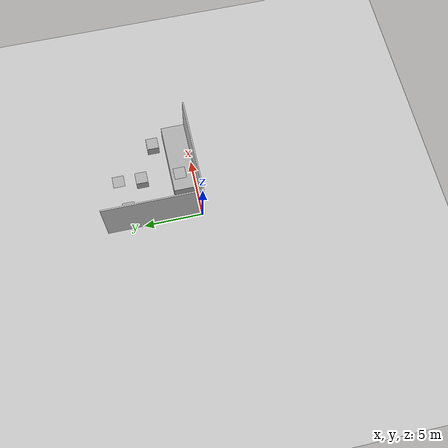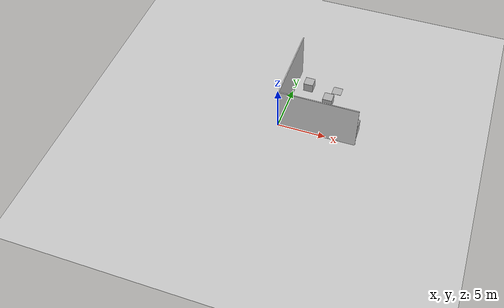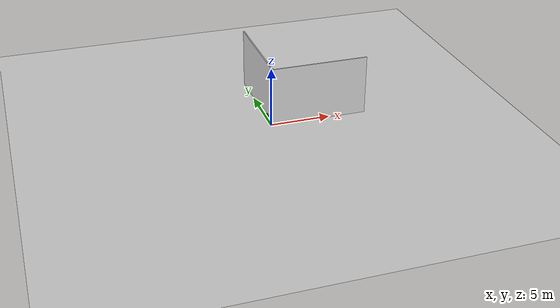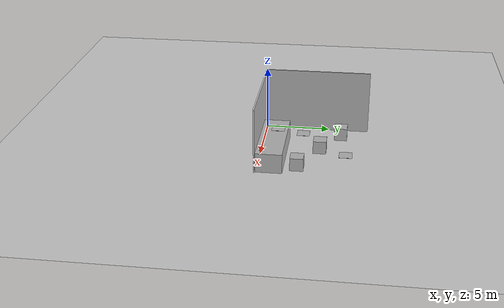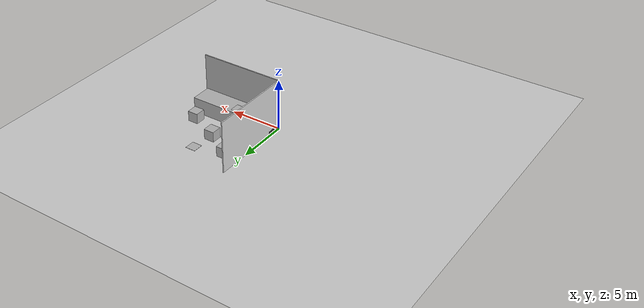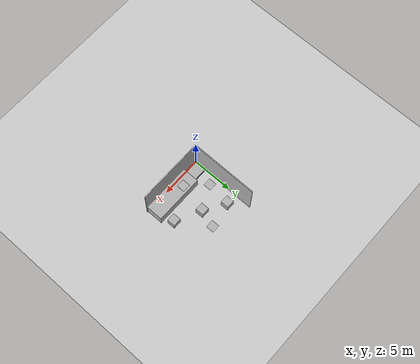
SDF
<sdf version="1.10">
 <world name="FRTL25world">
  <physics type="ode">
   <max_step_size>0.001</max_step_size>
   <real_time_factor>1</real_time_factor>
   <real_time_update_rate>1000</real_time_update_rate>
  </physics>
  <gravity>0 0 -9.8000000000000007</gravity>
  <magnetic_field>5.5644999999999998e-06 2.2875799999999999e-05 -4.2388400000000002e-05</magnetic_field>
  <atmosphere type="adiabatic"/>
  <scene>
   <ambient>0.400000006 0.400000006 0.400000006 1</ambient>
   <background>0.699999988 0.699999988 0.699999988 1</background>
   <shadows>true</shadows>
  </scene>
  <model name="ground"><include><uri>models/ground</uri></include></model>
  <model name="grass"><include><uri>models/grass</uri></include><pose>0 0 -0.4 0 0 0</pose></model>
  <model name="wall_west">
   <include><uri>models/wall_logo</uri></include>
   <pose degrees="true">0.05 4.05 2.5 0 0 180</pose>
  </model>
  <model name="wall_south">
   <include><uri>models/wall_logo</uri></include>
   <pose degrees="true">4.05 -0.05 2.5 0 0 -90</pose>
  </model>
  <model name="takeoff"><include><uri>models/takeoff_base</uri></include><pose>1 0.75 0.25 0 0 0</pose></model>
  <model name="moving1"><include><uri>models/moving_base</uri></include><pose>4.5 6.5 0.005 0 0 0</pose></model>
  <model name="moving2"><include><uri>models/moving_base</uri></include><pose>1.0 3.0 0.005 0 0 0</pose></model>
  <model name="moving3">
   <include><uri>models/moving_base</uri></include>
   <pose>3.5 1.25 1.515 0 0 0</pose>
  </model>
  <model name="high1"><include><uri>models/high_base</uri></include><pose>1.5 6.0 0.5 0 0 0</pose></model>
  <model name="high2"><include><uri>models/high_base</uri></include><pose>4.0 4.5 0.5 0 0 0</pose></model>
  <model name="high3"><include><uri>models/high_base</uri></include><pose>7.0 3.0 0.5 0 0 0</pose></model>
  <model name="phase_4_enviroment">
   <include><uri>models/box2x6</uri></include>
   <pose degrees="true">5.0 1.0 0.75 0 0 90</pose>
  </model>
  <light name="sun" type="directional">
   <pose>0 0 10 0 0 0</pose>
   <intensity>1</intensity>
   <direction>-0.5 0.10000000000000001 -0.90000000000000002</direction>
   <diffuse>0.800000012 0.800000012 0.800000012 1</diffuse>
   <specular>0.200000003 0.200000003 0.200000003 1</specular>
   <attenuation>
    <range>1000</range>
    <linear>0.01</linear>
    <constant>0.90000000000000002</constant>
    <quadratic>0.001</quadratic>
   </attenuation>
   <spot><inner_angle>0</inner_angle><outer_angle>0</outer_angle><falloff>0</falloff></spot>
  </light>
  <spherical_coordinates>
   <surface_model>EARTH_WGS84</surface_model>
   <world_frame_orientation>ENU</world_frame_orientation>
   <latitude_deg>47.397971057728974</latitude_deg>
   <longitude_deg>8.546163739800146</longitude_deg>
   <elevation>0</elevation>
  </spherical_coordinates>
 </world>
</sdf>

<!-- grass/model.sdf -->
<sdf version='1.9'>
  <model name='ground_plane'>
    <static>true</static>
    <pose>0 0 0 0 0 0</pose>
    <self_collide>false</self_collide>
    <link name='link'>
      <collision name='collision'>
        <geometry>
          <plane>
            <normal>0 0 1</normal>
            <size>30 30</size>
          </plane>
        </geometry>
        <surface>
          <friction>
            <ode/>
          </friction>
          <bounce/>
          <contact/>
        </surface>
      </collision>
      <visual name='visual1'>
        <pose>-11.25 -11.25 0 0 0 1.5708</pose>
        <geometry>
          <plane>
            <normal>0 0 1</normal>
            <size>7.5 7.5</size>
          </plane>
        </geometry>
        <material>
          <diffuse>1.0 1.0 1.0</diffuse>
          <specular>1.0 1.0 1.0</specular>
          <pbr>
            <metal>
              <albedo_map>materials/textures/grass.png</albedo_map>
              <metalness>0</metalness>
              <roughness>0.7</roughness>
            </metal>
          </pbr>
        </material>
      </visual>
      <visual name='visual2'>
        <pose>-3.75 -11.25 0 0 0 3.14159</pose>
        <geometry>
          <plane>
            <normal>0 0 1</normal>
            <size>7.5 7.5</size>
          </plane>
        </geometry>
        <material>
          <diffuse>1.0 1.0 1.0</diffuse>
          <specular>1.0 1.0 1.0</specular>
          <pbr>
            <metal>
              <albedo_map>materials/textures/grass.png</albedo_map>
              <metalness>0</metalness>
              <roughness>0.7</roughness>
            </metal>
          </pbr>
        </material>
      </visual>
      <visual name='visual3'>
        <pose>3.75 -11.25 0 0 0 4.71239</pose>
        <geometry>
          <plane>
            <normal>0 0 1</normal>
            <size>7.5 7.5</size>
          </plane>
        </geometry>
        <material>
          <diffuse>1.0 1.0 1.0</diffuse>
          <specular>1.0 1.0 1.0</specular>
          <pbr>
            <metal>
              <albedo_map>materials/textures/grass.png</albedo_map>
              <metalness>0</metalness>
              <roughness>0.7</roughness>
            </metal>
          </pbr>
        </material>
      </visual>
      <visual name='visual4'>
        <pose>11.25 -11.25 0 0 0 0</pose>
        <geometry>
          <plane>
            <normal>0 0 1</normal>
            <size>7.5 7.5</size>
          </plane>
        </geometry>
        <material>
          <diffuse>1.0 1.0 1.0</diffuse>
          <specular>1.0 1.0 1.0</specular>
          <pbr>
            <metal>
              <albedo_map>materials/textures/grass.png</albedo_map>
              <metalness>0</metalness>
              <roughness>0.7</roughness>
            </metal>
          </pbr>
        </material>
      </visual>
      <visual name='visual5'>
        <pose>-11.25 -3.75 0 0 0 3.14159</pose>
        <geometry>
          <plane>
            <normal>0 0 1</normal>
            <size>7.5 7.5</size>
          </plane>
        </geometry>
        <material>
          <diffuse>1.0 1.0 1.0</diffuse>
          <specular>1.0 1.0 1.0</specular>
          <pbr>
            <metal>
              <albedo_map>materials/textures/grass.png</albedo_map>
              <metalness>0</metalness>
              <roughness>0.7</roughness>
            </metal>
          </pbr>
        </material>
      </visual>
      <visual name='visual6'>
        <pose>-3.75 -3.75 0 0 0 1.5708</pose>
        <geometry>
          <plane>
            <normal>0 0 1</normal>
            <size>7.5 7.5</size>
          </plane>
        </geometry>
        <material>
          <diffuse>1.0 1.0 1.0</diffuse>
          <specular>1.0 1.0 1.0</specular>
          <pbr>
            <metal>
              <albedo_map>materials/textures/grass.png</albedo_map>
              <metalness>0</metalness>
              <roughness>0.7</roughness>
            </metal>
          </pbr>
        </material>
      </visual>
      <visual name='visual7'>
        <pose>3.75 -3.75 0 0 0 0</pose>
        <geometry>
          <plane>
            <normal>0 0 1</normal>
            <size>7.5 7.5</size>
          </plane>
        </geometry>
        <material>
          <diffuse>1.0 1.0 1.0</diffuse>
          <specular>1.0 1.0 1.0</specular>
          <pbr>
            <metal>
              <albedo_map>materials/textures/grass.png</albedo_map>
              <metalness>0</metalness>
              <roughness>0.7</roughness>
            </metal>
          </pbr>
        </material>
      </visual>
      <visual name='visual8'>
        <pose>11.25 -3.75 0 0 0 4.71239</pose>
        <geometry>
          <plane>
            <normal>0 0 1</normal>
            <size>7.5 7.5</size>
          </plane>
        </geometry>
        <material>
          <diffuse>1.0 1.0 1.0</diffuse>
          <specular>1.0 1.0 1.0</specular>
          <pbr>
            <metal>
              <albedo_map>materials/textures/grass.png</albedo_map>
              <metalness>0</metalness>
              <roughness>0.7</roughness>
            </metal>
          </pbr>
        </material>
      </visual>
      <visual name='visual9'>
        <pose>-11.25 3.75 0 0 0 0</pose>
        <geometry>
          <plane>
            <normal>0 0 1</normal>
            <size>7.5 7.5</size>
          </plane>
        </geometry>
        <material>
          <diffuse>1.0 1.0 1.0</diffuse>
          <specular>1.0 1.0 1.0</specular>
          <pbr>
            <metal>
              <albedo_map>materials/textures/grass.png</albedo_map>
              <metalness>0</metalness>
              <roughness>0.7</roughness>
            </metal>
          </pbr>
        </material>
      </visual>
      <visual name='visual10'>
        <pose>-3.75 3.75 0 0 0 0</pose>
        <geometry>
          <plane>
            <normal>0 0 1</normal>
            <size>7.5 7.5</size>
          </plane>
        </geometry>
        <material>
          <diffuse>1.0 1.0 1.0</diffuse>
          <specular>1.0 1.0 1.0</specular>
          <pbr>
            <metal>
              <albedo_map>materials/textures/grass.png</albedo_map>
              <metalness>0</metalness>
              <roughness>0.7</roughness>
            </metal>
          </pbr>
        </material>
      </visual>
      <visual name='visual11'>
        <pose>3.75 3.75 0 0 0 3.14159</pose>
        <geometry>
          <plane>
            <normal>0 0 1</normal>
            <size>7.5 7.5</size>
          </plane>
        </geometry>
        <material>
          <diffuse>1.0 1.0 1.0</diffuse>
          <specular>1.0 1.0 1.0</specular>
          <pbr>
            <metal>
              <albedo_map>materials/textures/grass.png</albedo_map>
              <metalness>0</metalness>
              <roughness>0.7</roughness>
            </metal>
          </pbr>
        </material>
      </visual>
      <visual name='visual12'>
        <pose>11.25 3.75 0 0 0 4.71239</pose>
        <geometry>
          <plane>
            <normal>0 0 1</normal>
            <size>7.5 7.5</size>
          </plane>
        </geometry>
        <material>
          <diffuse>1.0 1.0 1.0</diffuse>
          <specular>1.0 1.0 1.0</specular>
          <pbr>
            <metal>
              <albedo_map>materials/textures/grass.png</albedo_map>
              <metalness>0</metalness>
              <roughness>0.7</roughness>
            </metal>
          </pbr>
        </material>
      </visual>
      <visual name='visual13'>
        <pose>-11.25 11.25 0 0 0 1.5708</pose>
        <geometry>
          <plane>
            <normal>0 0 1</normal>
            <size>7.5 7.5</size>
          </plane>
        </geometry>
        <material>
          <diffuse>1.0 1.0 1.0</diffuse>
          <specular>1.0 1.0 1.0</specular>
          <pbr>
            <metal>
              <albedo_map>materials/textures/grass.png</albedo_map>
              <metalness>0</metalness>
              <roughness>0.7</roughness>
            </metal>
          </pbr>
        </material>
      </visual>
      <visual name='visual14'>
        <pose>-3.75 11.25 0 0 0 3.14159</pose>
        <geometry>
          <plane>
            <normal>0 0 1</normal>
            <size>7.5 7.5</size>
          </plane>
        </geometry>
        <material>
          <diffuse>1.0 1.0 1.0</diffuse>
          <specular>1.0 1.0 1.0</specular>
          <pbr>
            <metal>
              <albedo_map>materials/textures/grass.png</albedo_map>
              <metalness>0</metalness>
              <roughness>0.7</roughness>
            </metal>
          </pbr>
        </material>
      </visual>
      <visual name='visual15'>
        <pose>3.75 11.25 0 0 0 0</pose>
        <geometry>
          <plane>
            <normal>0 0 1</normal>
            <size>7.5 7.5</size>
          </plane>
        </geometry>
        <material>
          <diffuse>1.0 1.0 1.0</diffuse>
          <specular>1.0 1.0 1.0</specular>
          <pbr>
            <metal>
              <albedo_map>materials/textures/grass.png</albedo_map>
              <metalness>0</metalness>
              <roughness>0.7</roughness>
            </metal>
          </pbr>
        </material>
      </visual>
      <visual name='visual16'>
        <pose>11.25 11.25 0 0 0 0</pose>
        <geometry>
          <plane>
            <normal>0 0 1</normal>
            <size>7.5 7.5</size>
          </plane>
        </geometry>
        <material>
          <diffuse>1.0 1.0 1.0</diffuse>
          <specular>1.0 1.0 1.0</specular>
          <pbr>
            <metal>
              <albedo_map>materials/textures/grass.png</albedo_map>
              <metalness>0</metalness>
              <roughness>0.7</roughness>
            </metal>
          </pbr>
        </material>
      </visual>
      <enable_wind>false</enable_wind>
    </link>
  </model>
</sdf>

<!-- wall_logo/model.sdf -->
<sdf version='1.10'>
  <model name='wall'>
    <pose>0 0 0 0 0 0</pose>
    <link name='box_link'>
      <collision name='box_collision'>
        <geometry>
          <box>
            <size>0.1 8.1 5</size>
          </box>
        </geometry>
        <surface>
          <friction>
            <ode/>
          </friction>
          <bounce/>
          <contact/>
        </surface>
      </collision>
      <visual name='wall_visual'>
        <geometry>
          <box>
            <size>0.1 8.1 5</size>
          </box>
        </geometry>
        <material>
          <ambient>0.827 0.827 0.827 1.0</ambient>
          <diffuse>0.827 0.827 0.827 1.0</diffuse>
          <specular>0.827 0.827 0.827 1.0</specular>
          <emissive>0.2 0.2 0.2 1</emissive>
          <pbr>
              <metal>
                  <albedo_map>materials/textures/wall_4k_diff.jpg</albedo_map>
                  <emissive_map>materials/textures/wall_4k.png</emissive_map>
              </metal>
          </pbr>
        </material>
        <cast_shadows>false</cast_shadows>
      </visual>
      <visual name='image'>
        <pose>-0.0501 0 0 0 0 0</pose>
        <geometry>
          <box>
            <size>0.000001 8.1 5</size>
          </box>
        </geometry>
        <material>
          <diffuse>0.7 0.7 0.7 1</diffuse>
          <specular>1 1 1 1</specular>
          <pbr>
            <metal>
              <albedo_map>materials/textures/robocup_logo.png</albedo_map>   <!--Takeoff base image-->
              <metalness> 0 </metalness>
              <roughness>1</roughness>
            </metal>
          </pbr>
      </material>
      <cast_shadows>false</cast_shadows>
    </visual>
      <pose>0 0 0 0 0 0</pose>
      <enable_wind>false</enable_wind>
    </link>
    <static>true</static>
    <self_collide>false</self_collide>
  </model>
</sdf>

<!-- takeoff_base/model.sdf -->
<sdf version='1.10'>
<model name='base_takeoff'>
  <link name='box_link'>
    <collision name='box_collision'>
      <geometry>
        <box>
          <size>2 1.5 0.5</size>
        </box>
      </geometry>
      <surface>
        <friction>
          <ode/>
        </friction>
        <bounce/>
        <contact/>
      </surface>
    </collision>
    <visual name='visual'>
      <geometry>
        <box>
          <size>2 1.5 0.499</size>
        </box>
      </geometry>
      <material>
        <ambient>0.175 0.175 0.175  1.0</ambient> <!-- dark grey -->
        <diffuse>0.175 0.175 0.175  1.0</diffuse>
        <specular>1 1 1 1</specular>
      </material>
    </visual>
    <visual name='image'>
      <pose>0 0 0.25 0 0 0</pose>
        <geometry>
          <box>
            <size>2 1.5 0.001</size>
          </box>
        </geometry>
        <material>
        <diffuse>0.7 0.7 0.7 1</diffuse>
        <specular>1 1 1 1</specular>
        <pbr>
            <metal>
              <albedo_map>materials/textures/base_takeoff.png</albedo_map>   <!--Takeoff base image-->
              <metalness> 0 </metalness>
              <roughness>1</roughness>
            </metal>
		      </pbr>
      </material>
      </visual>
    <pose>0 0 0 0 0 0</pose>
    <enable_wind>false</enable_wind>
  </link>
  <static>true</static>
  <self_collide>false</self_collide>
</model>
</sdf>

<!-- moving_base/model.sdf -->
<sdf version='1.10'>
<model name='base_takeoff'>
  <pose>0 0 0 0 0 0</pose>
  <link name='box_link'>
    <collision name='box_collision'>
      <geometry>
        <box>
          <size>1 1 0.01</size>
        </box>
      </geometry>
      <surface>
        <friction>
          <ode/>
        </friction>
        <bounce/>
        <contact/>
      </surface>
    </collision>
    <visual name='visual'>
      <geometry>
        <box>
          <size>1 1 0.0099</size>
        </box>
      </geometry>
      <material>
        <ambient>0.175 0.175 0.175 1.0</ambient> <!-- dark grey -->
        <diffuse>0.175 0.175 0.175 1.0</diffuse>
        <specular>1 1 1 1</specular>
      </material>
    </visual>
    <visual name='image'>
      <pose>0 0 0.005 0 0 0</pose>
        <geometry>
          <box>
            <size>1 1 0.0001</size>
          </box>
        </geometry>
        <material>
        <diffuse>0.7 0.7 0.7 1</diffuse>
        <specular>1 1 1 1</specular>
        <pbr>
            <metal>
              <albedo_map>materials/textures/base_suspensa.png</albedo_map>   <!--Takeoff base image-->
              <metalness> 0 </metalness>
              <roughness>1</roughness>
            </metal>
		      </pbr>
      </material>
      </visual>
    <pose>0 0 0 0 0 0</pose>
    <enable_wind>false</enable_wind>
  </link>
  <static>true</static>
  <self_collide>false</self_collide>
</model>
</sdf>

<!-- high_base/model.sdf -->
<sdf version='1.10'>
<model name='base_takeoff'>
  <pose>0 0 0 0 0 0</pose>
  <link name='box_link'>
    <collision name='box_collision'>
      <geometry>
        <box>
          <size>1 1 1</size>
        </box>
      </geometry>
      <surface>
        <friction>
          <ode/>
        </friction>
        <bounce/>
        <contact/>
      </surface>
    </collision>
    <visual name='visual'>
      <geometry>
        <box>
          <size>1 1 0.999</size>
        </box>
      </geometry>
      <material>
        <diffuse>0.7 0.7 0.7 1</diffuse>
        <specular>1 1 1 1</specular>
        <pbr>
            <metal>
              <albedo_map>materials/textures/wall_diff.jpg</albedo_map>   <!--Takeoff base image-->
              <metalness> 0 </metalness>
              <roughness>1</roughness>
            </metal>
		      </pbr>
      </material>
    </visual>
    <visual name='image'>
      <pose>0 0 0.5 0 0 0</pose>
        <geometry>
          <box>
            <size>1 1 0.001</size>
          </box>
        </geometry>
        <material>
        <diffuse>0.7 0.7 0.7 1</diffuse>
        <specular>1 1 1 1</specular>
        <pbr>
            <metal>
              <albedo_map>materials/textures/base_suspensa.png</albedo_map>   <!--Takeoff base image-->
              <metalness> 0 </metalness>
              <roughness>1</roughness>
            </metal>
		      </pbr>
      </material>
      </visual>
    <pose>0 0 0 0 0 0</pose>
    <enable_wind>false</enable_wind>
  </link>
  <static>true</static>
  <self_collide>false</self_collide>
</model>
</sdf>

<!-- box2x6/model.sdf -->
<sdf version='1.10'>
<model name='box2x6'>
  <link name='box_link'>
    <collision name='box_collision'>
      <geometry>
        <box>
          <size>2 6 1.5</size>
        </box>
      </geometry>
      <surface>
        <friction>
          <ode/>
        </friction>
        <bounce/>
        <contact/>
      </surface>
    </collision>
    <visual name='visual'>
      <geometry>
        <box>
          <size>0.1 0.1 0.1</size>
        </box>
      </geometry>
      <material>
        <ambient>0.175 0.175 0.175  1.0</ambient> <!-- dark grey -->
        <diffuse>0.175 0.175 0.175  1.0</diffuse>
        <specular>1 1 1 1</specular>
      </material>
    </visual>
    <visual name='image'>
      <pose>0 0 0 0 0 0</pose>
        <geometry>
          <box>
            <size>2 6 1.5</size>
          </box>
        </geometry>
        <material>
        <diffuse>0.7 0.7 0.7 1</diffuse>
        <specular>1 1 1 1</specular>
        <pbr>
            <metal>
              <albedo_map>materials/textures/diff.jpg</albedo_map>   <!--Takeoff base image-->
              <metalness> 0 </metalness>
              <roughness>1</roughness>
            </metal>
		      </pbr>
      </material>
      </visual>
    <pose>0 0 0 0 0 0</pose>
    <enable_wind>false</enable_wind>
  </link>
  <static>true</static>
  <self_collide>false</self_collide>
</model>
</sdf>
